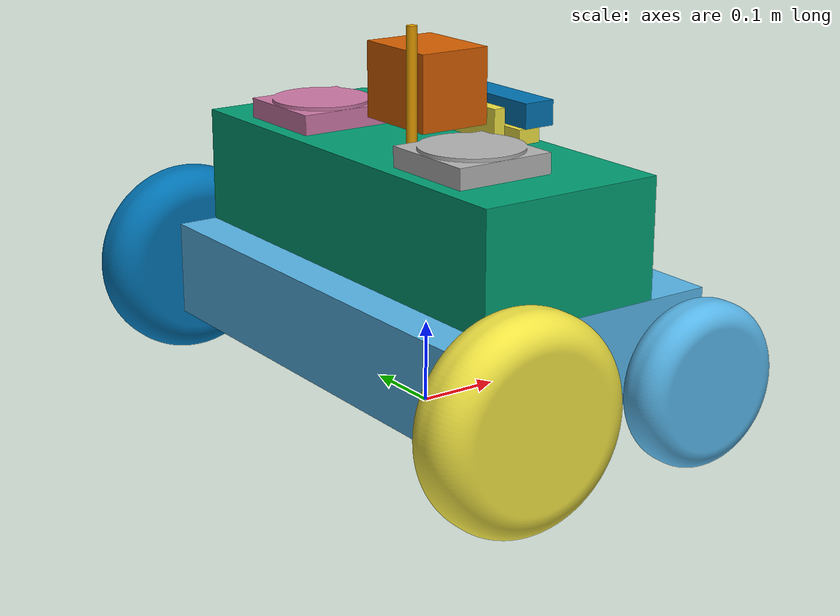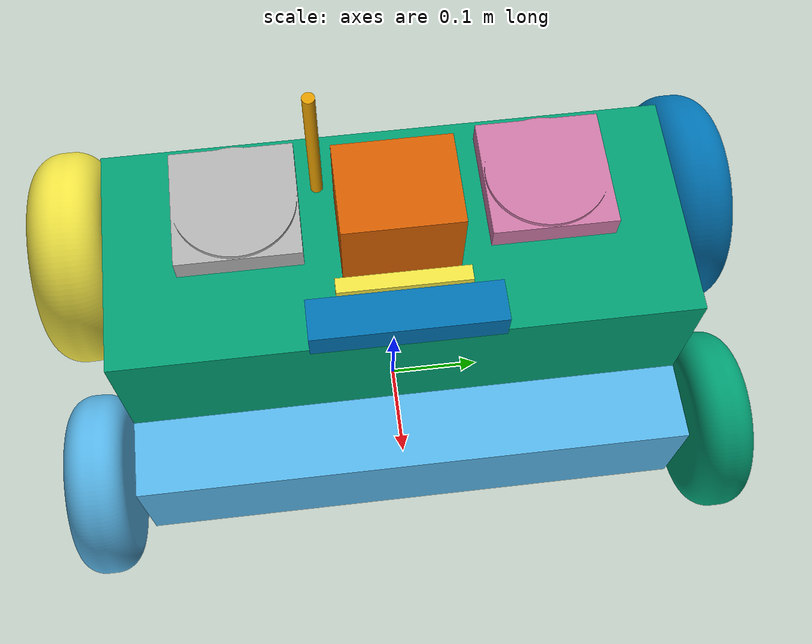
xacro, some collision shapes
<?xml version="1.0"?>

<robot xmlns:xacro="http://www.ros.org/wiki/xacro" name="oxbot">
    <xacro:arg name="is_ignition" default="true"/>

    <xacro:include filename="$(find oxbot_description)/urdf/oxbot_gazebo.xacro"/>
    <xacro:include filename="$(find oxbot_description)/urdf/oxbot_ros2_control.xacro"/>

    <link name="base_footprint"/>

    <link name="chassis_bottom_link">
        <inertial>
            <origin rpy="0 0 0" xyz="0 0 0.0575"/>
            <mass value="4.5"/>
            <inertia ixx="0.12205" ixy="0.0" ixz="0.0" iyy="0.05243" iyz="0.0" izz="0.16467"/>
        </inertial>
        <visual>
            <origin rpy="0 0 -1.57" xyz="0 0 0"/>
            <geometry>
                <mesh filename="package://oxbot_description/meshes/oxbot_chassis_bottom.stl" scale="0.001 0.001 0.001"/>
            </geometry>
        </visual>
        <collision>
            <origin rpy="0 0 -1.57" xyz="0 0 0"/>
            <geometry>
                <mesh filename="package://oxbot_description/meshes/oxbot_chassis_bottom.stl" scale="0.001 0.001 0.001"/>
            </geometry>
        </collision>
    </link>

    <joint name="chassis_bottom_joint" type="fixed">
        <parent link="base_footprint"/>
        <child link="chassis_bottom_link"/>
        <origin rpy="0 0 0" xyz="0 0 0.071"/>
    </joint>

    <link name="chassis_top_link">
        <inertial>
            <origin rpy="0 0 0" xyz="0 0 0.07"/>
            <mass value="2.0"/>
            <inertia ixx="0.05553" ixy="0.0" ixz="0.0" iyy="0.01208" iyz="0.0" izz="0.06108"/>
        </inertial>
        <visual>
            <origin rpy="0 0 -1.57" xyz="0 0 0"/>
            <geometry>
                <mesh filename="package://oxbot_description/meshes/oxbot_chassis_top.stl" scale="0.001 0.001 0.001"/>
            </geometry>
        </visual>
        <collision>
            <origin rpy="0 0 -1.57" xyz="0 0 0"/>
            <geometry>
                <mesh filename="package://oxbot_description/meshes/oxbot_chassis_top.stl" scale="0.001 0.001 0.001"/>
            </geometry>
        </collision>
    </link>

    <joint name="chassis_top_joint" type="fixed">
        <parent link="chassis_bottom_link"/>
        <child link="chassis_top_link"/>
        <origin rpy="0 0 0" xyz="-0.0135 0 0.115"/>
    </joint>

    <link name="camera_mount_link">
        <inertial>
            <origin rpy="0 0 0" xyz="0 0 0"/>
            <mass value="0.1"/>
            <inertia ixx="0.000283" ixy="0.0" ixz="0.0" iyy="0.000020" iyz="0.0" izz="0.00027"/>
        </inertial>
        <visual>
            <origin rpy="0 0 1.57" xyz="0 -0.09 0"/>
            <geometry>
                <mesh filename="package://oxbot_description/meshes/oxbot_realsense_mount.stl" scale="0.001 0.001 0.001"/>
            </geometry>
        </visual>
        <collision>
            <origin rpy="0 0 1.57" xyz="0 0 0"/>
            <geometry>
                <box size="0.180 0.03 0.04"/>
            </geometry>
        </collision>
    </link>

    <joint name="camera_mount_joint" type="fixed">
        <parent link="chassis_top_link"/>
        <child link="camera_mount_link"/>
        <origin rpy="0 0 0" xyz="0.1075 0 0.140"/>
    </joint>

    <link name="camera_link">
        <inertial>
            <origin rpy="0 0 0" xyz="0 0 0"/>
            <mass value="0.072" />
            <inertia ixx="0.003881243" ixy="0.0" ixz="0.0" iyy="0.000498940" iyz="0.0" izz="0.003879257" />
        </inertial>
        <visual>
            <origin rpy="1.57 0 1.57" xyz="0.01 -0.055 0.01"/>
            <geometry>
                <mesh filename="package://oxbot_description/meshes/d455.stl" scale="0.001 0.001 0.001"/>
            </geometry>
        </visual>
        <collision>
            <origin rpy="1.57 0 1.57" xyz="0.01 -0.055 0.01"/>
            <geometry>
                <box size="0.18 0.03 0.04"/>
            </geometry>
        </collision>
    </link>

    <joint name="camera_joint" type="fixed">
        <parent link="chassis_bottom_link"/>
        <child link="camera_link"/>
        <origin rpy="0 0 0" xyz="0.08255 0.05318 0.2778125"/>
    </joint>

    <link name="lidar_link">
        <inertial>
            <origin rpy="0 0 0" xyz="0 0 0"/>
            <mass value="0.17" />
            <inertia ixx="1e-6" ixy="0" ixz="0" iyy="1e-6" iyz="0" izz="1e-6" />
        </inertial>
        <visual>
            <origin rpy="1.57 0 0" xyz="-0.0351 0.0351 -0.06415"/>
            <geometry>
                <mesh filename="package://oxbot_description/meshes/rplidar_main.STL" scale="0.001 0.001 0.001"/>
            </geometry>
        </visual>
        <collision>
            <origin rpy="1.57 0 0" xyz="0 0 0"/>
            <geometry>
                <box size="0.110 0.09 0.09"/>
            </geometry>
        </collision>
    </link>

    <joint name="lidar_joint" type="fixed">
        <parent link="chassis_bottom_link"/>
        <child link="lidar_link"/>
        <origin rpy="0 0 -1.57" xyz="0.0 0.0 0.3208"/>
    </joint>

    <link name="fan1_link">
        <inertial>
            <origin rpy="0 0 0" xyz="0 0 0"/>
            <mass value="0.05" />
            <inertia ixx="63e-6" ixy="0" ixz="0" iyy="63e-6" iyz="0" izz="122e-6" />
        </inertial>
        <visual>
            <origin rpy="0 0 0" xyz="0 0 0"/>
            <geometry>
                <mesh filename="package://oxbot_description/meshes/oxbot_fan.stl" scale="0.001 0.001 0.001"/>
            </geometry>
        </visual>
        <collision>
            <origin rpy="0 0 0" xyz="0 0 0"/>
            <geometry>
                <mesh filename="package://oxbot_description/meshes/oxbot_fan.stl" scale="0.001 0.001 0.001"/>
            </geometry>
        </collision>
    </link>

    <joint name="fan1_joint" type="fixed">
        <parent link="chassis_top_link"/>
        <child link="fan1_link"/>
        <origin rpy="0 0 0" xyz="-.095 0.09 0.140"/>
    </joint>

    <link name="fan2_link">
        <inertial>
            <origin rpy="0 0 0" xyz="0 0 0"/>
            <mass value="0.05" />
            <inertia ixx="63e-6" ixy="0" ixz="0" iyy="63e-6" iyz="0" izz="122e-6" />
        </inertial>
        <visual>
            <origin rpy="0 0 0" xyz="-0 0 0"/>
            <geometry>
                <mesh filename="package://oxbot_description/meshes/oxbot_fan.stl" scale="0.001 0.001 0.001"/>
            </geometry>
        </visual>
        <collision>
            <origin rpy="0 0 0" xyz="-0 0 0"/>
            <geometry>
                <mesh filename="package://oxbot_description/meshes/oxbot_fan.stl" scale="0.001 0.001 0.001"/>
            </geometry>
        </collision>
    </link>

    <joint name="fan2_joint" type="fixed">
        <parent link="chassis_top_link"/>
        <child link="fan2_link"/>
        <origin rpy="0 0 0" xyz="-.095 -0.21 0.140"/>
    </joint>

    <link name="antenna_link">
        <inertial>
            <origin rpy="0 0 0" xyz="0 0 0"/>
            <mass value="0.025" />
            <inertia ixx="1e-6" ixy="0" ixz="0" iyy="1e-6" iyz="0" izz="1e-6" />
        </inertial>
        <visual>
            <origin rpy="0 0 0" xyz="0 0 0"/>
            <geometry>
                <mesh filename="package://oxbot_description/meshes/oxbot_antenna.stl" scale="0.001 0.001 0.001"/>
            </geometry>
        </visual>
        <collision>
            <origin rpy="0 0 0" xyz="0 0 0"/>
            <geometry>
                <mesh filename="package://oxbot_description/meshes/oxbot_antenna.stl" scale="0.001 0.001 0.001"/>
            </geometry>
        </collision>
    </link>

    <joint name="antenna_joint" type="fixed">
        <parent link="chassis_top_link"/>
        <child link="antenna_link"/>
        <origin rpy="0 0 0" xyz="-0.057 -0.07 0.140"/>
    </joint>

    <link name="wheel_front_right_link">
        <inertial>
            <origin rpy="0 0 0" xyz="0 0 0"/>
            <mass value="3.0" />
            <inertia ixx="0.005772" ixy="0" ixz="0" iyy="0.010086" iyz="0" izz="0.005772" />
        </inertial>
        <visual>
            <origin rpy="0 0 01.57" xyz="0 -0.075 0"/>
            <geometry>
                <mesh filename="package://oxbot_description/meshes/oxbot_front_wheel.stl" scale="0.001 0.001 0.001"/>
            </geometry>
        </visual>
        <collision>
            <origin rpy="0 0 01.57" xyz="0 -0.075 0"/>
            <geometry>
                <mesh filename="package://oxbot_description/meshes/oxbot_front_wheel.stl" scale="0.001 0.001 0.001"/>
            </geometry>
        </collision>
    </link>

    <joint name="wheel_front_right_joint" type="continuous">
        <parent link="chassis_bottom_link"/>
        <child link="wheel_front_right_link"/>
        <axis xyz="0 1 0"/>
        <origin rpy="0 0 0" xyz="0.1325 -0.28 0.026"/>
    </joint>

    <link name="wheel_front_left_link">
        <inertial>
            <origin rpy="0 0 0" xyz="0 0 0"/>
            <mass value="3.0" />
            <inertia ixx="0.005772" ixy="0" ixz="0" iyy="0.010086" iyz="0" izz="0.005772" />
        </inertial>
        <visual>
            <origin rpy="0 0 -1.57" xyz="0 0.075 0"/>
            <geometry>
                <mesh filename="package://oxbot_description/meshes/oxbot_front_wheel.stl" scale="0.001 0.001 0.001"/>
            </geometry>
        </visual>
        <collision>
            <origin rpy="0 0 -1.57" xyz="0 0.075 0"/>
            <geometry>
                <mesh filename="package://oxbot_description/meshes/oxbot_front_wheel.stl" scale="0.001 0.001 0.001"/>
            </geometry>
        </collision>
    </link>

    <joint name="wheel_front_left_joint" type="continuous">
        <parent link="chassis_bottom_link"/>
        <child link="wheel_front_left_link"/>
        <axis xyz="0 1 0"/>
        <origin rpy="0 0 0" xyz="0.1325 0.28 0.026"/>
    </joint>

    <link name="wheel_rear_right_link">
        <inertial>
            <origin rpy="0 0 0" xyz="0 0 0"/>
            <mass value="4.0" />
            <inertia ixx="0.014425" ixy="0" ixz="0" iyy="0.02645" iyz="0" izz="0.014425" />
        </inertial>
        <visual>
            <origin rpy="0 0 1.57" xyz="0 -0.105 0"/>
            <geometry>
                <mesh filename="package://oxbot_description/meshes/oxbot_rear_wheel.stl" scale="0.001 0.001 0.001"/>
            </geometry>
        </visual>
        <collision>
            <origin rpy="0 0 1.57" xyz="0 -0.105 0"/>
            <geometry>
                <mesh filename="package://oxbot_description/meshes/oxbot_rear_wheel.stl" scale="0.001 0.001 0.001"/>
            </geometry>
        </collision>
    </link>

    <joint name="wheel_rear_right_joint" type="continuous">
        <parent link="chassis_bottom_link"/>
        <child link="wheel_rear_right_link"/>
        <axis xyz="0 1 0"/>
        <origin rpy="0 0 0" xyz="-0.1325 -0.28 0.049"/>
    </joint>

    <link name="wheel_rear_left_link">
        <inertial>
            <origin rpy="0 0 0" xyz="0 0 0"/>
            <mass value="4.0" />
            <inertia ixx="0.014425" ixy="0" ixz="0" iyy="0.02645" iyz="0" izz="0.014425" />
        </inertial>
        <visual>
            <origin rpy="0 0 -1.57" xyz="0 0.105 0"/>
            <geometry>
                <mesh filename="package://oxbot_description/meshes/oxbot_rear_wheel.stl" scale="0.001 0.001 0.001"/>
            </geometry>
        </visual>
        <collision>
            <origin rpy="0 0 -1.57" xyz="0 0.105 0"/>
            <geometry>
                <mesh filename="package://oxbot_description/meshes/oxbot_rear_wheel.stl" scale="0.001 0.001 0.001"/>
            </geometry>
        </collision>
    </link>

    <joint name="wheel_rear_left_joint" type="continuous">
        <parent link="chassis_bottom_link"/>
        <child link="wheel_rear_left_link"/>
        <axis xyz="0 1 0"/>
        <origin rpy="0 0 0" xyz="-0.1325 0.28 0.049"/>
    </joint>

</robot>
